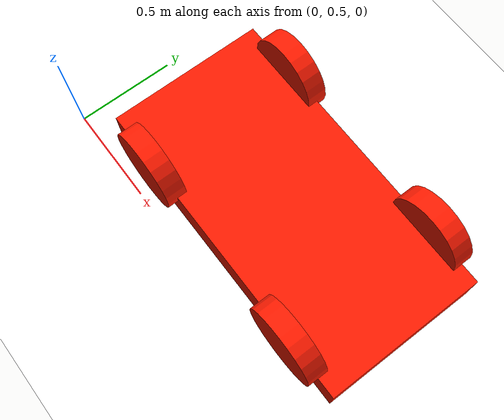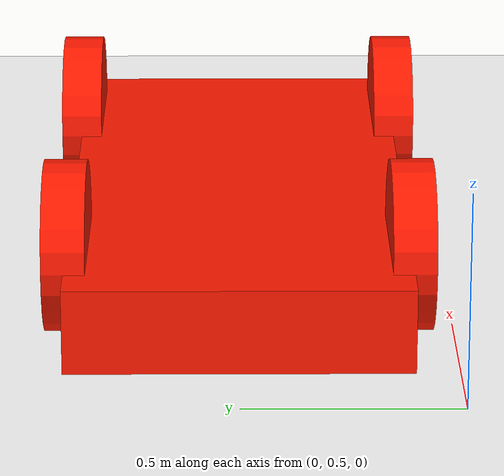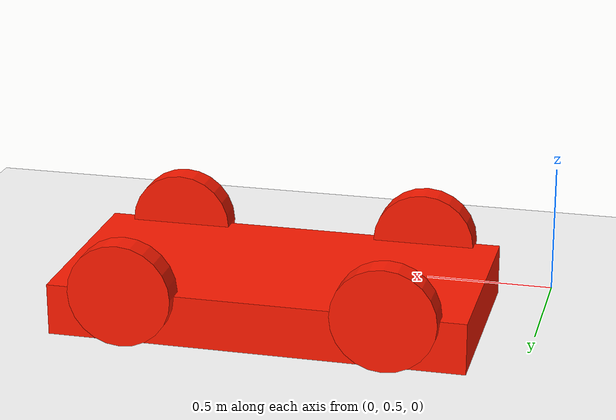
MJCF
<mujoco>
    <option gravity='0 0.0 0'/>
    <worldbody>
      <light diffuse="1.5 .5 1.5" pos="0 0 5" dir="0 0.2 -1"/>
      <geom type="plane" size="10 10 0.1" rgba="1 1 1 1"/>
      <body pos="1 1 0.1" euler='0 90 0'>
        <joint type='free'/>
        <geom type="box" size=".1 .4 .8" rgba="1 .1 0 1"/>
      </body>
      <body pos="1.5 0.6 0.2" euler='90 0 0'>
        <joint name='left_join' type="hinge" axis='0 0 1'/>
        <geom type="cylinder" size=".2 .05" rgba="1 .1 0 1"/>
      </body>
      <body pos="1.5 1.4 0.2" euler='90 0 0'>
        <joint name='right_join' type="hinge" axis='0 0 1'/>
        <geom type="cylinder" size=".2 .05" rgba="1 .1 0 1"/>
      </body>
      <body pos="0.5 0.6 0.2" euler='90 0 0'>
        <joint name='left_front_join' type="hinge" axis='0 0 1'/>
        <geom type="cylinder" size=".2 .05" rgba="1 .1 0 1"/>
      </body>
      <body pos="0.5 1.4 0.2" euler='90 0 0'>
        <joint name='right_front_join' type="hinge" axis='0 0 1'/>
        <geom type="cylinder" size=".2 .05" rgba="1 .1 0 1"/>
      </body>
    </worldbody>
    <actuator>
      <velocity name='left-v' joint='left_join' kv='100'/>
      <velocity name='right-v' joint='right_join' kv='100'/>
    </actuator>
  </mujoco>
